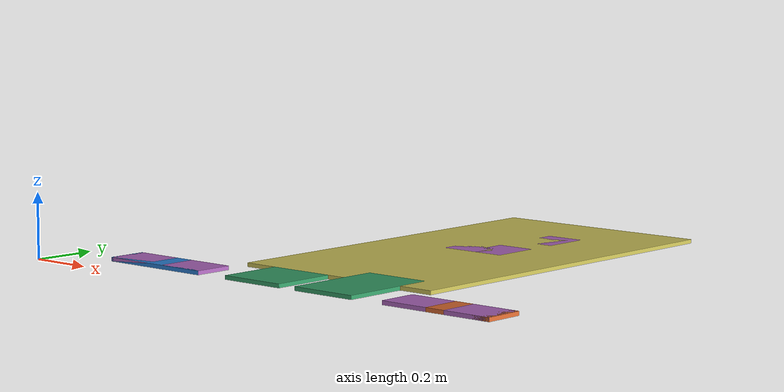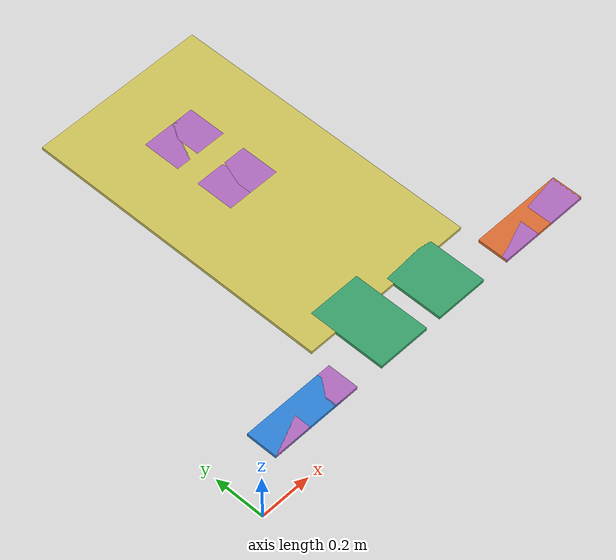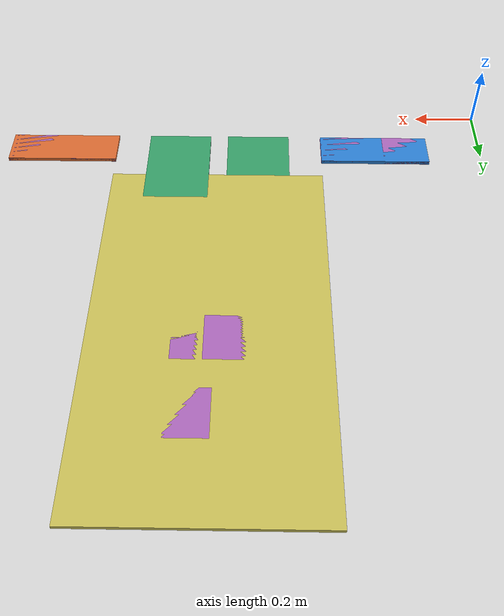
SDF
<?xml version='1.0' encoding='utf-8'?>
<sdf version="1.6">
  <model name="warehouse_zone_markers">
    <static>true</static>
    <link name="zones">
      <visual name="inbound_zone">
        <pose>0.366102 0.183051 0.006 0 0 0</pose>
        <geometry>
          <box>
            <size>0.366102 0.122034 0.012</size>
          </box>
        </geometry>
        <material>
          <ambient>0.18 0.52 0.86 1</ambient>
          <diffuse>0.18 0.52 0.86 1</diffuse>
        </material>
      </visual>
      <visual name="vehicle_1_zone">
        <pose>0.765000 0.274534 0.006 0 0 0</pose>
        <geometry>
          <box>
            <size>0.210000 0.305000 0.012</size>
          </box>
        </geometry>
        <material>
          <ambient>0.22 0.64 0.42 1</ambient>
          <diffuse>0.22 0.64 0.42 1</diffuse>
        </material>
      </visual>
      <visual name="vehicle_2_zone">
        <pose>1.035000 0.274534 0.006 0 0 0</pose>
        <geometry>
          <box>
            <size>0.210000 0.305000 0.012</size>
          </box>
        </geometry>
        <material>
          <ambient>0.22 0.64 0.42 1</ambient>
          <diffuse>0.22 0.64 0.42 1</diffuse>
        </material>
      </visual>
      <visual name="outbound_zone">
        <pose>1.433898 0.183051 0.006 0 0 0</pose>
        <geometry>
          <box>
            <size>0.366102 0.122034 0.012</size>
          </box>
        </geometry>
        <material>
          <ambient>0.88 0.43 0.20 1</ambient>
          <diffuse>0.88 0.43 0.20 1</diffuse>
        </material>
      </visual>
      <visual name="warehouse_section_a">
        <pose>0.854237 1.235593 0.006 0 0 0</pose>
        <geometry>
          <box>
            <size>0.122034 0.152542 0.012</size>
          </box>
        </geometry>
        <material>
          <ambient>0.70 0.42 0.76 1</ambient>
          <diffuse>0.70 0.42 0.76 1</diffuse>
        </material>
      </visual>
      <visual name="warehouse_section_b">
        <pose>0.854237 0.991526 0.006 0 0 0</pose>
        <geometry>
          <box>
            <size>0.122034 0.152543 0.012</size>
          </box>
        </geometry>
        <material>
          <ambient>0.70 0.42 0.76 1</ambient>
          <diffuse>0.70 0.42 0.76 1</diffuse>
        </material>
      </visual>
      <visual name="warehouse_section_c">
        <pose>0.945763 1.235593 0.006 0 0 0</pose>
        <geometry>
          <box>
            <size>0.122034 0.152542 0.012</size>
          </box>
        </geometry>
        <material>
          <ambient>0.70 0.42 0.76 1</ambient>
          <diffuse>0.70 0.42 0.76 1</diffuse>
        </material>
      </visual>
      <visual name="warehouse_section_d">
        <pose>0.945763 0.991526 0.006 0 0 0</pose>
        <geometry>
          <box>
            <size>0.122034 0.152543 0.012</size>
          </box>
        </geometry>
        <material>
          <ambient>0.70 0.42 0.76 1</ambient>
          <diffuse>0.70 0.42 0.76 1</diffuse>
        </material>
      </visual>
      <visual name="main_aisle">
        <pose>0.900000 0.935000 0.006 0 0 0</pose>
        <geometry>
          <box>
            <size>0.700000 1.230000 0.012</size>
          </box>
        </geometry>
        <material>
          <ambient>0.82 0.78 0.36 1</ambient>
          <diffuse>0.82 0.78 0.36 1</diffuse>
        </material>
      </visual>
      <visual name="inbound_slot_1">
        <pose>0.259322 0.183051 0.006 0 0 0</pose>
        <geometry>
          <box>
            <size>0.152542 0.122034 0.012</size>
          </box>
        </geometry>
        <material>
          <ambient>0.70 0.42 0.76 1</ambient>
          <diffuse>0.70 0.42 0.76 1</diffuse>
        </material>
      </visual>
      <visual name="inbound_slot_2">
        <pose>0.472882 0.183051 0.006 0 0 0</pose>
        <geometry>
          <box>
            <size>0.152543 0.122034 0.012</size>
          </box>
        </geometry>
        <material>
          <ambient>0.70 0.42 0.76 1</ambient>
          <diffuse>0.70 0.42 0.76 1</diffuse>
        </material>
      </visual>
      <visual name="outbound_slot_1">
        <pose>1.327119 0.183051 0.006 0 0 0</pose>
        <geometry>
          <box>
            <size>0.152543 0.122034 0.012</size>
          </box>
        </geometry>
        <material>
          <ambient>0.70 0.42 0.76 1</ambient>
          <diffuse>0.70 0.42 0.76 1</diffuse>
        </material>
      </visual>
      <visual name="outbound_slot_2">
        <pose>1.540678 0.183051 0.006 0 0 0</pose>
        <geometry>
          <box>
            <size>0.152542 0.122034 0.012</size>
          </box>
        </geometry>
        <material>
          <ambient>0.70 0.42 0.76 1</ambient>
          <diffuse>0.70 0.42 0.76 1</diffuse>
        </material>
      </visual>
    </link>
  </model>
</sdf>
